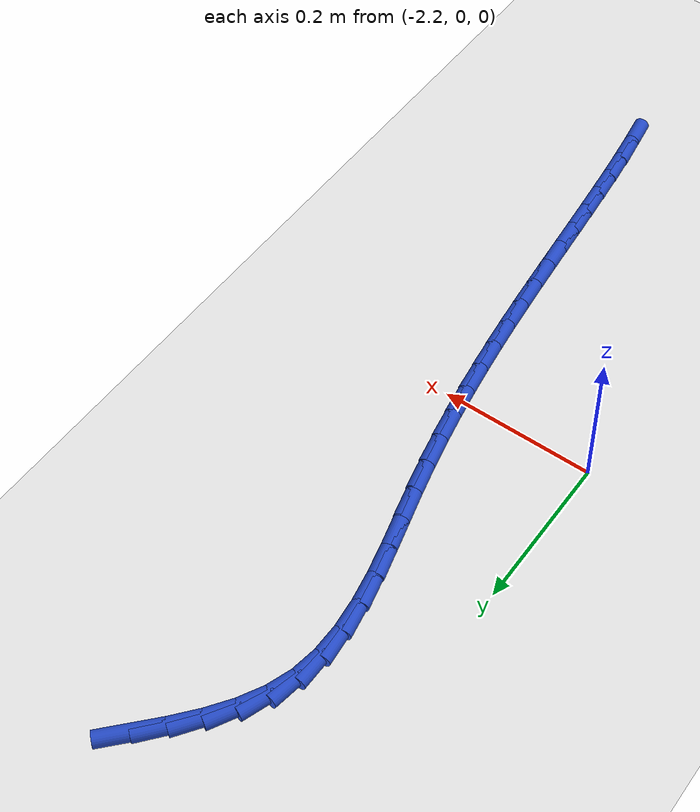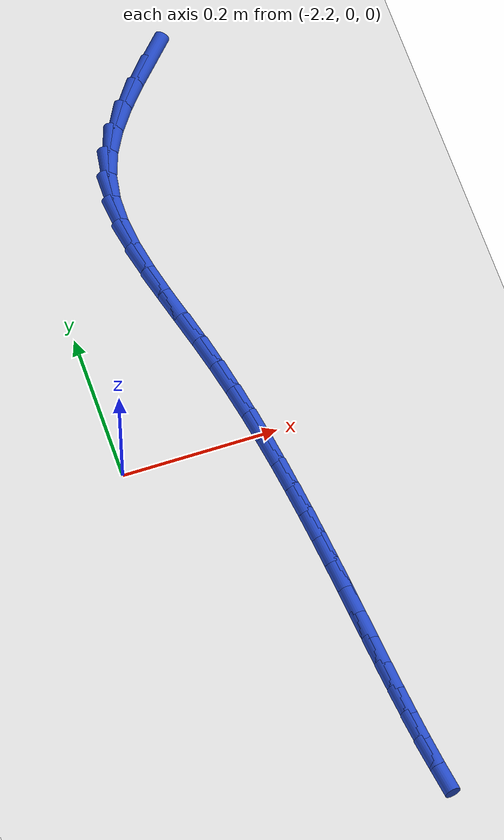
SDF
<sdf version="1.6">
 <world name="default">
  <model name="ground_plane">
   <static>1</static>
   <link name="link">
    <collision name="collision">
     <geometry><plane><normal>0 0 1</normal><size>100 100</size></plane></geometry>
     <surface><friction><ode><mu>100</mu><mu2>50</mu2></ode></friction></surface>
    </collision>
    <visual name="visual">
     <cast_shadows>0</cast_shadows>
     <geometry><plane><normal>0 0 1</normal><size>100 100</size></plane></geometry>
     <material>
      <script><uri>file://media/materials/scripts/gazebo.material</uri><name>Gazebo/WhiteGlow</name></script>
     </material>
    </visual>
   </link>
  </model>
  <model name="line">
   <link name="link_75">
    <pose>-1.9857672413259768 0.5589240377435494 0.01 0 1.57 0.8163996865701358</pose>
    <collision name="collision">
     <geometry><cylinder><radius>0.01</radius><length>0.08</length></cylinder></geometry>
    </collision>
    <visual name="visual">
     <material>
      <script><name>Gazebo/Blue</name><uri>file://media/materials/scripts/gazebo.material</uri></script>
     </material>
     <geometry><cylinder><radius>0.01</radius><length>0.08</length></cylinder></geometry>
    </visual>
   </link>
   <link name="link_76">
    <pose>-2.0126442779206717 0.5303266585910381 0.01 0 1.57 0.8639735687824688</pose>
    <collision name="collision">
     <geometry><cylinder><radius>0.01</radius><length>0.08</length></cylinder></geometry>
    </collision>
    <visual name="visual">
     <material>
      <script><name>Gazebo/Blue</name><uri>file://media/materials/scripts/gazebo.material</uri></script>
     </material>
     <geometry><cylinder><radius>0.01</radius><length>0.08</length></cylinder></geometry>
    </visual>
   </link>
   <link name="link_77">
    <pose>-2.037370008820381 0.5013744609089071 0.01 0 1.57 0.9450954609293862</pose>
    <collision name="collision">
     <geometry><cylinder><radius>0.01</radius><length>0.08</length></cylinder></geometry>
    </collision>
    <visual name="visual">
     <material>
      <script><name>Gazebo/Blue</name><uri>file://media/materials/scripts/gazebo.material</uri></script>
     </material>
     <geometry><cylinder><radius>0.01</radius><length>0.08</length></cylinder></geometry>
    </visual>
   </link>
   <link name="link_78">
    <pose>-2.0588496360259256 0.4716469581111541 0.01 0 1.57 1.0647086450625842</pose>
    <collision name="collision">
     <geometry><cylinder><radius>0.01</radius><length>0.08</length></cylinder></geometry>
    </collision>
    <visual name="visual">
     <material>
      <script><name>Gazebo/Blue</name><uri>file://media/materials/scripts/gazebo.material</uri></script>
     </material>
     <geometry><cylinder><radius>0.01</radius><length>0.08</length></cylinder></geometry>
    </visual>
   </link>
   <link name="link_79">
    <pose>-2.075988361538125 0.4407236636117757 0.01 0 1.57 1.2255189261155242</pose>
    <collision name="collision">
     <geometry><cylinder><radius>0.01</radius><length>0.08</length></cylinder></geometry>
    </collision>
    <visual name="visual">
     <material>
      <script><name>Gazebo/Blue</name><uri>file://media/materials/scripts/gazebo.material</uri></script>
     </material>
     <geometry><cylinder><radius>0.01</radius><length>0.08</length></cylinder></geometry>
    </visual>
   </link>
   <link name="link_80">
    <pose>-2.0876922735749788 0.4081843972435069 0.01 0 1.57 1.406924404670239</pose>
    <collision name="collision">
     <geometry><cylinder><radius>0.01</radius><length>0.08</length></cylinder></geometry>
    </collision>
    <visual name="visual">
     <material>
      <script><name>Gazebo/Blue</name><uri>file://media/materials/scripts/gazebo.material</uri></script>
     </material>
     <geometry><cylinder><radius>0.01</radius><length>0.08</length></cylinder></geometry>
    </visual>
   </link>
   <link name="link_81">
    <pose>-2.093380169200939 0.37378625321567344 0.01 0 1.57 1.5579517132813043</pose>
    <collision name="collision">
     <geometry><cylinder><radius>0.01</radius><length>0.08</length></cylinder></geometry>
    </collision>
    <visual name="visual">
     <material>
      <script><name>Gazebo/Blue</name><uri>file://media/materials/scripts/gazebo.material</uri></script>
     </material>
     <geometry><cylinder><radius>0.01</radius><length>0.08</length></cylinder></geometry>
    </visual>
   </link>
   <link name="link_82">
    <pose>-2.0938429284752664 0.3377607375976978 0.01 0 1.57 -1.4708594749327406</pose>
    <collision name="collision">
     <geometry><cylinder><radius>0.01</radius><length>0.08</length></cylinder></geometry>
    </collision>
    <visual name="visual">
     <material>
      <script><name>Gazebo/Blue</name><uri>file://media/materials/scripts/gazebo.material</uri></script>
     </material>
     <geometry><cylinder><radius>0.01</radius><length>0.08</length></cylinder></geometry>
    </visual>
   </link>
   <link name="link_83">
    <pose>-2.0900985266557304 0.30041787696829464 0.01 0 1.57 -1.391931752499028</pose>
    <collision name="collision">
     <geometry><cylinder><radius>0.01</radius><length>0.08</length></cylinder></geometry>
    </collision>
    <visual name="visual">
     <material>
      <script><name>Gazebo/Blue</name><uri>file://media/materials/scripts/gazebo.material</uri></script>
     </material>
     <geometry><cylinder><radius>0.01</radius><length>0.08</length></cylinder></geometry>
    </visual>
   </link>
   <link name="link_84">
    <pose>-2.0831649390001017 0.26206769790618006 0.01 0 1.57 -1.3417168836739684</pose>
    <collision name="collision">
     <geometry><cylinder><radius>0.01</radius><length>0.08</length></cylinder></geometry>
    </collision>
    <visual name="visual">
     <material>
      <script><name>Gazebo/Blue</name><uri>file://media/materials/scripts/gazebo.material</uri></script>
     </material>
     <geometry><cylinder><radius>0.01</radius><length>0.08</length></cylinder></geometry>
    </visual>
   </link>
   <link name="link_85">
    <pose>-2.074060140766149 0.22302022699006852 0.01 0 1.57 -1.3163094576026793</pose>
    <collision name="collision">
     <geometry><cylinder><radius>0.01</radius><length>0.08</length></cylinder></geometry>
    </collision>
    <visual name="visual">
     <material>
      <script><name>Gazebo/Blue</name><uri>file://media/materials/scripts/gazebo.material</uri></script>
     </material>
     <geometry><cylinder><radius>0.01</radius><length>0.08</length></cylinder></geometry>
    </visual>
   </link>
   <link name="link_86">
    <pose>-2.0638021072116444 0.183585490798676 0.01 0 1.57 -1.3135813652366208</pose>
    <collision name="collision">
     <geometry><cylinder><radius>0.01</radius><length>0.08</length></cylinder></geometry>
    </collision>
    <visual name="visual">
     <material>
      <script><name>Gazebo/Blue</name><uri>file://media/materials/scripts/gazebo.material</uri></script>
     </material>
     <geometry><cylinder><radius>0.01</radius><length>0.08</length></cylinder></geometry>
    </visual>
   </link>
   <link name="link_87">
    <pose>-2.0534088135943556 0.14407351591071751 0.01 0 1.57 -1.331469023888554</pose>
    <collision name="collision">
     <geometry><cylinder><radius>0.01</radius><length>0.08</length></cylinder></geometry>
    </collision>
    <visual name="visual">
     <material>
      <script><name>Gazebo/Blue</name><uri>file://media/materials/scripts/gazebo.material</uri></script>
     </material>
     <geometry><cylinder><radius>0.01</radius><length>0.08</length></cylinder></geometry>
    </visual>
   </link>
   <link name="link_88">
    <pose>-2.043818918724588 0.1047712862159255 0.01 0 1.57 -1.3554118695033952</pose>
    <collision name="collision">
     <geometry><cylinder><radius>0.01</radius><length>0.08</length></cylinder></geometry>
    </collision>
    <visual name="visual">
     <material>
      <script><name>Gazebo/Blue</name><uri>file://media/materials/scripts/gazebo.material</uri></script>
     </material>
     <geometry><cylinder><radius>0.01</radius><length>0.08</length></cylinder></geometry>
    </visual>
   </link>
   <link name="link_89">
    <pose>-2.0352855564971084 0.06576662971741916 0.01 0 1.57 -1.377616037008083</pose>
    <collision name="collision">
     <geometry><cylinder><radius>0.01</radius><length>0.08</length></cylinder></geometry>
    </collision>
    <visual name="visual">
     <material>
      <script><name>Gazebo/Blue</name><uri>file://media/materials/scripts/gazebo.material</uri></script>
     </material>
     <geometry><cylinder><radius>0.01</radius><length>0.08</length></cylinder></geometry>
    </visual>
   </link>
   <link name="link_90">
    <pose>-2.027710921956295 0.027045421102961317 0.01 0 1.57 -1.397870445047492</pose>
    <collision name="collision">
     <geometry><cylinder><radius>0.01</radius><length>0.08</length></cylinder></geometry>
    </collision>
    <visual name="visual">
     <material>
      <script><name>Gazebo/Blue</name><uri>file://media/materials/scripts/gazebo.material</uri></script>
     </material>
     <geometry><cylinder><radius>0.01</radius><length>0.08</length></cylinder></geometry>
    </visual>
   </link>
   <link name="link_91">
    <pose>-2.0209943699664557 -0.011407290057148188 0.01 0 1.57 -1.41604248684984</pose>
    <collision name="collision">
     <geometry><cylinder><radius>0.01</radius><length>0.08</length></cylinder></geometry>
    </collision>
    <visual name="visual">
     <material>
      <script><name>Gazebo/Blue</name><uri>file://media/materials/scripts/gazebo.material</uri></script>
     </material>
     <geometry><cylinder><radius>0.01</radius><length>0.08</length></cylinder></geometry>
    </visual>
   </link>
   <link name="link_92">
    <pose>-2.0150352553918998 -0.049606454192610325 0.01 0 1.57 -1.4320145003433264</pose>
    <collision name="collision">
     <geometry><cylinder><radius>0.01</radius><length>0.08</length></cylinder></geometry>
    </collision>
    <visual name="visual">
     <material>
      <script><name>Gazebo/Blue</name><uri>file://media/materials/scripts/gazebo.material</uri></script>
     </material>
     <geometry><cylinder><radius>0.01</radius><length>0.08</length></cylinder></geometry>
    </visual>
   </link>
   <link name="link_93">
    <pose>-2.0097329330969367 -0.0875670217331237 0.01 0 1.57 -1.4456831838771984</pose>
    <collision name="collision">
     <geometry><cylinder><radius>0.01</radius><length>0.08</length></cylinder></geometry>
    </collision>
    <visual name="visual">
     <material>
      <script><name>Gazebo/Blue</name><uri>file://media/materials/scripts/gazebo.material</uri></script>
     </material>
     <geometry><cylinder><radius>0.01</radius><length>0.08</length></cylinder></geometry>
    </visual>
   </link>
   <link name="link_94">
    <pose>-2.004986757945876 -0.1253039431083893 0.01 0 1.57 -1.4569587348513444</pose>
    <collision name="collision">
     <geometry><cylinder><radius>0.01</radius><length>0.08</length></cylinder></geometry>
    </collision>
    <visual name="visual">
     <material>
      <script><name>Gazebo/Blue</name><uri>file://media/materials/scripts/gazebo.material</uri></script>
     </material>
     <geometry><cylinder><radius>0.01</radius><length>0.08</length></cylinder></geometry>
    </visual>
   </link>
   <link name="link_95">
    <pose>-2.000696084803027 -0.16283216874810735 0.01 0 1.57 -1.4657638605885397</pose>
    <collision name="collision">
     <geometry><cylinder><radius>0.01</radius><length>0.08</length></cylinder></geometry>
    </collision>
    <visual name="visual">
     <material>
      <script><name>Gazebo/Blue</name><uri>file://media/materials/scripts/gazebo.material</uri></script>
     </material>
     <geometry><cylinder><radius>0.01</radius><length>0.08</length></cylinder></geometry>
    </visual>
   </link>
   <link name="link_96">
    <pose>-1.9967602685326975 -0.20016664908197793 0.01 0 1.57 -1.4720328054855951</pose>
    <collision name="collision">
     <geometry><cylinder><radius>0.01</radius><length>0.08</length></cylinder></geometry>
    </collision>
    <visual name="visual">
     <material>
      <script><name>Gazebo/Blue</name><uri>file://media/materials/scripts/gazebo.material</uri></script>
     </material>
     <geometry><cylinder><radius>0.01</radius><length>0.08</length></cylinder></geometry>
    </visual>
   </link>
   <link name="link_97">
    <pose>-1.9930786639991978 -0.2373223345397013 0.01 0 1.57 -1.4757105260484507</pose>
    <collision name="collision">
     <geometry><cylinder><radius>0.01</radius><length>0.08</length></cylinder></geometry>
    </collision>
    <visual name="visual">
     <material>
      <script><name>Gazebo/Blue</name><uri>file://media/materials/scripts/gazebo.material</uri></script>
     </material>
     <geometry><cylinder><radius>0.01</radius><length>0.08</length></cylinder></geometry>
    </visual>
   </link>
   <link name="link_98">
    <pose>-1.9895506260668374 -0.27431417555097837 0.01 0 1.57 -1.4767521283822562</pose>
    <collision name="collision">
     <geometry><cylinder><radius>0.01</radius><length>0.08</length></cylinder></geometry>
    </collision>
    <visual name="visual">
     <material>
      <script><name>Gazebo/Blue</name><uri>file://media/materials/scripts/gazebo.material</uri></script>
     </material>
     <geometry><cylinder><radius>0.01</radius><length>0.08</length></cylinder></geometry>
    </visual>
   </link>
   <link name="link_99">
    <pose>-1.9860755095999243 -0.31115712254550776 0.01 0 1.57 -1.475122662773297</pose>
    <collision name="collision">
     <geometry><cylinder><radius>0.01</radius><length>0.08</length></cylinder></geometry>
    </collision>
    <visual name="visual">
     <material>
      <script><name>Gazebo/Blue</name><uri>file://media/materials/scripts/gazebo.material</uri></script>
     </material>
     <geometry><cylinder><radius>0.01</radius><length>0.08</length></cylinder></geometry>
    </visual>
   </link>
   <link name="link_100">
    <pose>-1.9825526694627686 -0.34786612595299055 0.01 0 1.57 -1.4707973478618934</pose>
    <collision name="collision">
     <geometry><cylinder><radius>0.01</radius><length>0.08</length></cylinder></geometry>
    </collision>
    <visual name="visual">
     <material>
      <script><name>Gazebo/Blue</name><uri>file://media/materials/scripts/gazebo.material</uri></script>
     </material>
     <geometry><cylinder><radius>0.01</radius><length>0.08</length></cylinder></geometry>
    </visual>
   </link>
   <link name="link_101">
    <pose>-1.9788814605196794 -0.3844561362031268 0.01 0 1.57 -1.4637555540476266</pose>
    <collision name="collision">
     <geometry><cylinder><radius>0.01</radius><length>0.08</length></cylinder></geometry>
    </collision>
    <visual name="visual">
     <material>
      <script><name>Gazebo/Blue</name><uri>file://media/materials/scripts/gazebo.material</uri></script>
     </material>
     <geometry><cylinder><radius>0.01</radius><length>0.08</length></cylinder></geometry>
    </visual>
   </link>
   <link name="link_102">
    <pose>-1.9749609460806934 -0.4209425095176594 0.01 0 1.57 -1.4531852826788478</pose>
    <collision name="collision">
     <geometry><cylinder><radius>0.01</radius><length>0.08</length></cylinder></geometry>
    </collision>
    <visual name="visual">
     <material>
      <script><name>Gazebo/Blue</name><uri>file://media/materials/scripts/gazebo.material</uri></script>
     </material>
     <geometry><cylinder><radius>0.01</radius><length>0.08</length></cylinder></geometry>
    </visual>
   </link>
   <link name="link_103">
    <pose>-1.970654393984792 -0.45739042309064554 0.01 0 1.57 -1.4376300281477037</pose>
    <collision name="collision">
     <geometry><cylinder><radius>0.01</radius><length>0.08</length></cylinder></geometry>
    </collision>
    <visual name="visual">
     <material>
      <script><name>Gazebo/Blue</name><uri>file://media/materials/scripts/gazebo.material</uri></script>
     </material>
     <geometry><cylinder><radius>0.01</radius><length>0.08</length></cylinder></geometry>
    </visual>
   </link>
   <link name="link_104">
    <pose>-1.965755271902543 -0.4939622036201264 0.01 0 1.57 -1.4172436164750668</pose>
    <collision name="collision">
     <geometry><cylinder><radius>0.01</radius><length>0.08</length></cylinder></geometry>
    </collision>
    <visual name="visual">
     <material>
      <script><name>Gazebo/Blue</name><uri>file://media/materials/scripts/gazebo.material</uri></script>
     </material>
     <geometry><cylinder><radius>0.01</radius><length>0.08</length></cylinder></geometry>
    </visual>
   </link>
  </model>
 </world>
</sdf>
